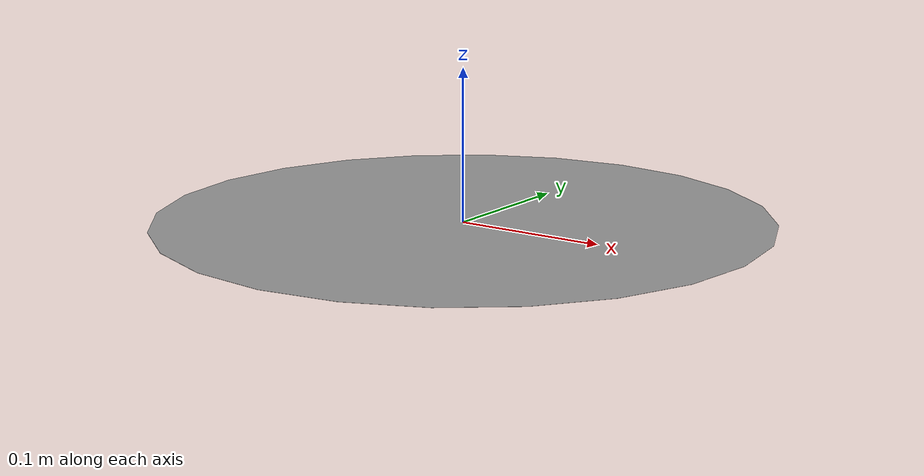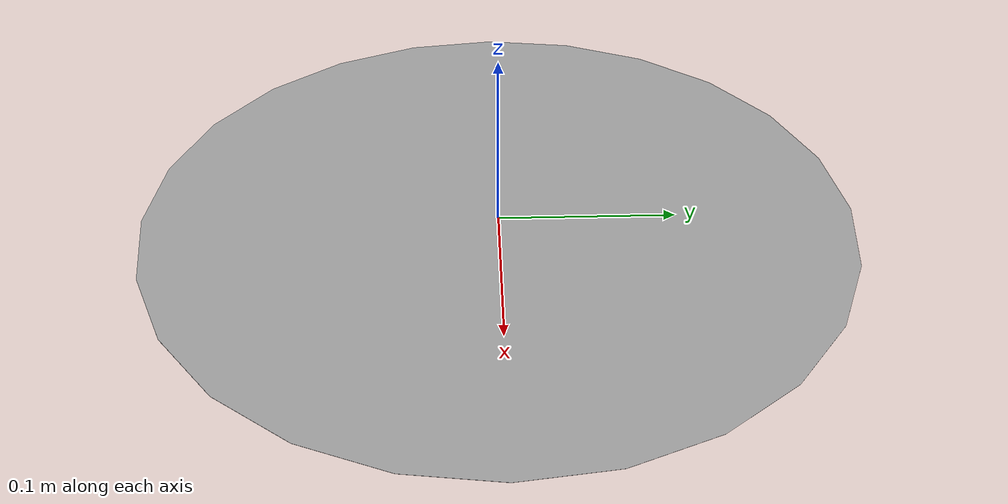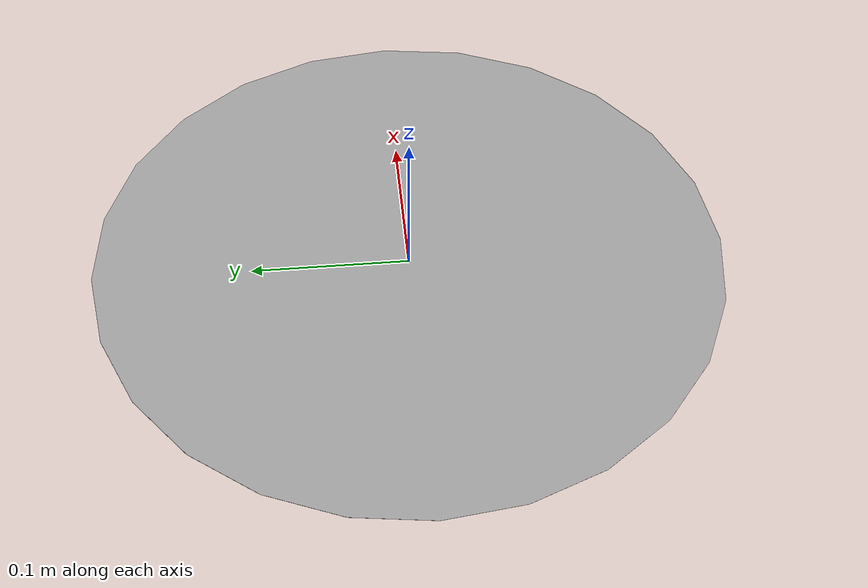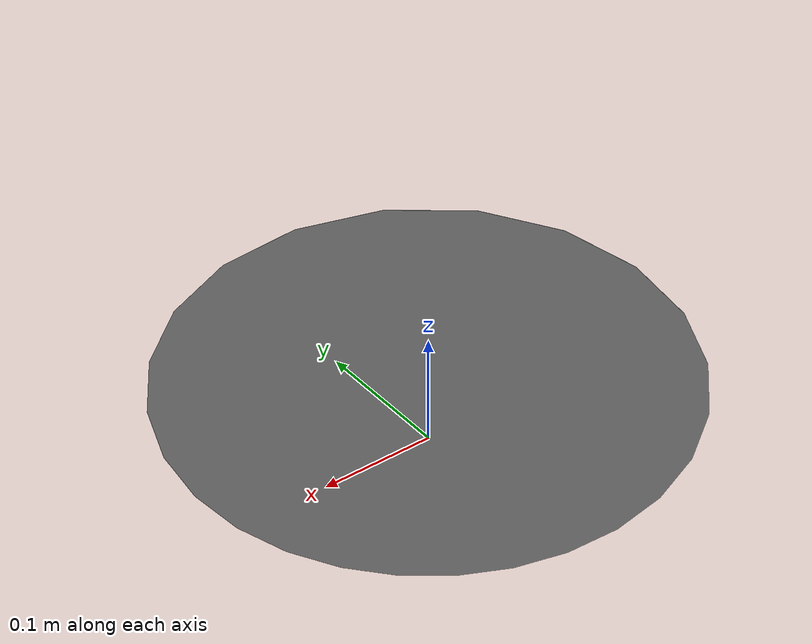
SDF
<?xml version='1.0'?>
<sdf version='1.4'>
  <model name='Reset'>
    <pose>0 0 0 0 0 0</pose>
    <link name='link'>
      <visual name='visual'>
        <pose>0 0 0.002 0 0 0</pose>
        <geometry>
         <cylinder>
            <radius> .2 </radius>
	    <length> 0.0001 </length>
          </cylinder>
        </geometry>
        <material>
          <script>
            <uri>file://media/materials/scripts/gazebo.material</uri>
	    <name>Gazebo/Grey</name>
          </script>
        </material>
      </visual>
      <velocity_decay>
        <linear>0</linear>
        <angular>0</angular>
      </velocity_decay>
    </link>
    <static>1</static>
  </model>
</sdf>
